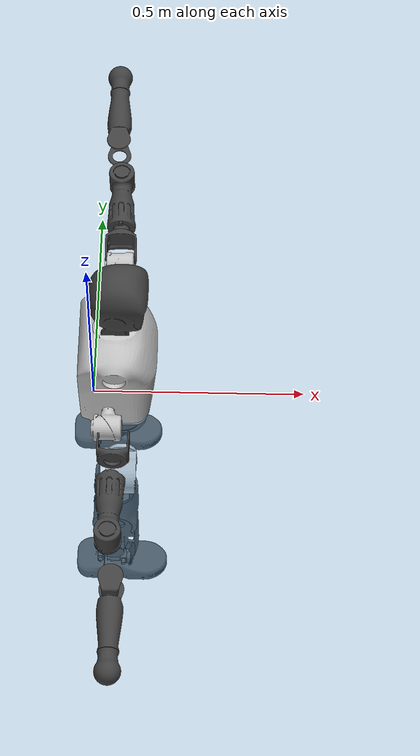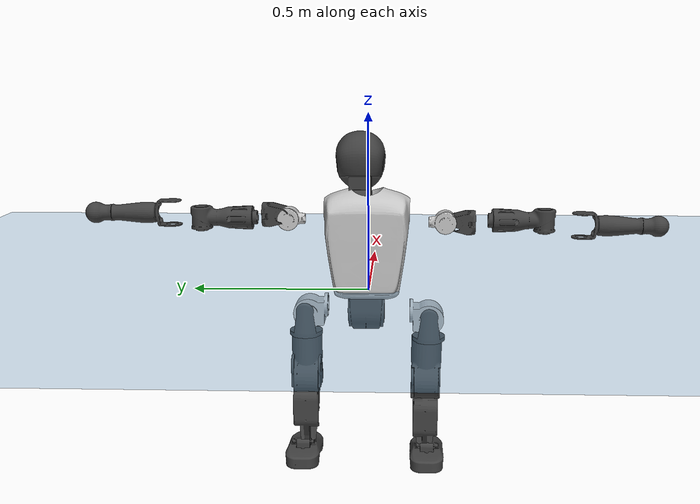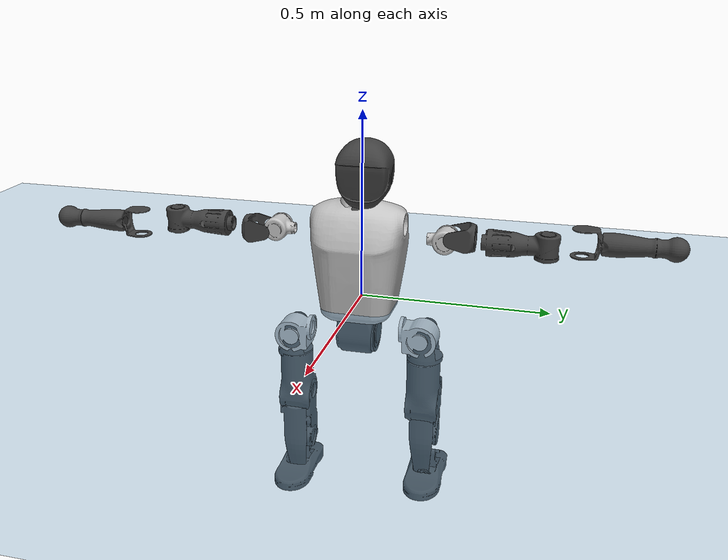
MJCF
<mujoco model="T1">
  <compiler angle="radian" assetdir="assets" balanceinertia="true" inertiafromgeom="false"/>

  <option timestep="0.005" density="1.2" viscosity="2e-05"/>

  <size nkey="1"/>

  <visual>
    <quality shadowsize="8192"/>
    <map shadowclip="0.5"/>
  </visual>

  <default>
    <default class="/">
      <joint armature="0.01" damping="0.01" frictionloss="0.1"/>
      <geom contype="0" conaffinity="0" group="1" solref="-1000 -80"/>
      <site size="0.01 0.005 0.005" group="5"/>
      <general forcelimited="true" biastype="affine" gainprm="25" biasprm="0 -25 -0.6"/>
      <default class="t1">
        <geom rgba="0.25 0.25 0.25 1"/>
        <default class="visual">
          <geom type="mesh" group="2"/>
        </default>
        <default class="collision">
          <geom group="3"/>
        </default>
        <default class="foot">
          <geom size="0.1115 0.05 0.015" type="box" condim="6" group="4" priority="1" solimp="0.015 1 0.015"/>
        </default>
        <default class="reward_collision_sphere">
          <geom group="5" rgba="1 0 0 1"/>
        </default>
      </default>
    </default>
  </default>

  <asset>
    <texture type="skybox" colorspace="auto" name="//unnamed_texture_0" builtin="gradient" rgb1="0.95 0.95 0.95" rgb2="0.95 0.95 0.95" width="100" height="600"/>
    <texture type="2d" colorspace="auto" name="texplane" builtin="checker" rgb1="0.345 0.575 0.748" rgb2="0.345 0.575 0.748" markrgb="1 1 1" width="512" height="512"/>
    <material name="MatPlane" class="/" texture="texplane" texuniform="true" texrepeat="2 2" specular="0.9"/>
    <mesh name="Trunk" class="/" file="Trunk.stl"/>
    <mesh name="H1" class="/" file="H1.stl"/>
    <mesh name="H2" class="/" file="H2.stl"/>
    <mesh name="AL1" class="/" file="AL1.stl"/>
    <mesh name="AL2" class="/" file="AL2.stl"/>
    <mesh name="AL3" class="/" file="AL3.stl"/>
    <mesh name="left_hand_link" class="/" file="left_hand_link.stl"/>
    <mesh name="AR1" class="/" file="AR1.stl"/>
    <mesh name="AR2" class="/" file="AR2.stl"/>
    <mesh name="AR3" class="/" file="AR3.stl"/>
    <mesh name="right_hand_link" class="/" file="right_hand_link.stl"/>
    <mesh name="Waist" class="/" file="Waist.stl"/>
    <mesh name="Hip_Pitch_Left" class="/" file="Hip_Pitch_Left.stl"/>
    <mesh name="Hip_Roll_Left" class="/" file="Hip_Roll_Left.stl"/>
    <mesh name="Hip_Yaw_Left" class="/" file="Hip_Yaw_Left.stl"/>
    <mesh name="Shank_Left" class="/" file="Shank_Left.stl"/>
    <mesh name="Ankle_Cross_Left" class="/" file="Ankle_Cross_Left.stl"/>
    <mesh name="left_foot_link" class="/" file="left_foot_link.stl"/>
    <mesh name="Hip_Pitch_Right" class="/" file="Hip_Pitch_Right.stl"/>
    <mesh name="Hip_Roll_Right" class="/" file="Hip_Roll_Right.stl"/>
    <mesh name="Hip_Yaw_Right" class="/" file="Hip_Yaw_Right.stl"/>
    <mesh name="Shank_Right" class="/" file="Shank_Right.stl"/>
    <mesh name="Ankle_Cross_Right" class="/" file="Ankle_Cross_Right.stl"/>
    <mesh name="right_foot_link" class="/" file="right_foot_link.stl"/>
  </asset>

  <worldbody>
    <geom name="floor" class="/" size="100 100 0.125" type="plane" group="0" material="MatPlane"/>
    <light name="toplight_shadow" class="/" pos="0 0 5" dir="0.0990148 0.0990148 -0.990148" type="directional" ambient="0.04 0.04 0.04" diffuse="0.55 0.55 0.55" specular="0.12 0.12 0.12"/>
    <light name="toplight_fill" class="/" pos="0 0 5" dir="0.0990148 0.0990148 -0.990148" type="directional" castshadow="false" ambient="0.04 0.04 0.04" diffuse="0.3 0.3 0.3" specular="0.08 0.08 0.08"/>
    <body name="trunk" childclass="t1" pos="0.000884204 0.00692713 0.00644571" quat="1 0.000435458 -2.02044e-05 0.000109709">
      <inertial pos="0.0360965 -0.0161388 0.0723513" quat="0.998646 -0.0185228 -0.000896278 -0.0486059" mass="17.4086" diaginertia="0.0431081 1.09067 0.0243617"/>
      <joint name="//unnamed_joint_0" type="free" armature="0" damping="0" frictionloss="0"/>
      <geom name="//unnamed_geom_1" class="visual" rgba="0.76 0.76 0.76 1" mesh="Trunk"/>
      <geom name="//unnamed_geom_2" class="collision" size="0.0832495 0.110999 0.166499" pos="0.0505606 0 0.098451" type="box"/>
      <geom name="//unnamed_geom_3" class="reward_collision_sphere" size="0.127649" pos="0.0505606 0 0.0820425"/>
      <geom name="//unnamed_geom_4" class="reward_collision_sphere" size="0.0166499" pos="0.0505606 0.141685 0"/>
      <geom name="//unnamed_geom_5" class="reward_collision_sphere" size="0.0166499" pos="0.0505606 -0.141685 0"/>
      <geom name="//unnamed_geom_6" class="reward_collision_sphere" size="0.0166499" pos="0.0505606 0.178356 0.147677"/>
      <geom name="//unnamed_geom_7" class="reward_collision_sphere" size="0.0166499" pos="0.0505606 -0.178356 0.147677"/>
      <site name="imu" pos="0.0471134 0.0416318 -0.0269269" size="0.0110999"/>
      <camera name="track" pos="0 -3.33376 0" quat="0.707107 0.707107 0 0" mode="trackcom"/>
      <camera name="ego_camera" pos="0.102807 0 0.344579" quat="-0.5 -0.5 0.5 0.5"/>
      <body name="H1" pos="0.0591276 0.0130901 0.185555" quat="1 -0.000381984 -0.00016901 0.000328184">
        <inertial pos="-0.000801758 -0.0185595 0.0512958" quat="0.744646 -0.0738354 0.0173296 0.663137" mass="0.711691" diaginertia="0.000106974 0.00339403 5.3243e-05"/>
        <joint name="AAHead_yaw" pos="0 0 0" axis="0.0183363 0.0318045 0.999326" stiffness="0.0164438" range="-1.55185 1.85454" armature="0.0114064" damping="0" frictionloss="0.203535"/>
        <geom name="//unnamed_geom_8" class="visual" mesh="H1"/>
        <body name="H2" pos="-0.00533283 0.00666169 0.0635334" quat="1 -0.00062234 -1.68964e-05 -0.000486593">
          <inertial pos="0.012546 0.0164979 0.0876813" quat="0.978802 0.163053 -0.0478155 -0.114342" mass="0.855444" diaginertia="0.000865552 0.0245871 0.000538005"/>
          <joint name="Head_pitch" pos="0 0 0" axis="-0.0244081 -0.999692 -0.00442434" range="-1.18918 0.337599" armature="0.0108329" damping="0" frictionloss="0.168794"/>
          <geom name="//unnamed_geom_9" class="visual" mesh="H2"/>
          <geom name="//unnamed_geom_10" class="collision" size="0.0887995" pos="0.00842676 0 0.0902468"/>
          <geom name="//unnamed_geom_11" class="reward_collision_sphere" size="0.0998994" pos="0.0168535 0 0.0820425"/>
        </body>
      </body>
      <body name="AL1" pos="0.0593575 0.178107 0.188653" quat="0.999975 0.00253066 0.000786439 0.00655938">
        <inertial pos="-0.00087229 0.0830367 0.00735059" quat="0.498504 0.483935 -0.560702 0.45046" mass="0.740029" diaginertia="0.00053395 0.0136977 0.000106288"/>
        <joint name="Left_Shoulder_Pitch" pos="0 0 0" axis="0.00917443 0.999954 0.00283433" range="-3.39934 0.959837" armature="0.0112847" damping="0.0327717" frictionloss="0.106025"/>
        <geom name="//unnamed_geom_12" class="visual" rgba="0.76 0.76 0.76 1" mesh="AL1"/>
        <body name="AL2" pos="0.000750867 0.0655961 0.0107938" quat="0.999985 -0.00356387 -0.000830272 0.00405835">
          <inertial pos="-0.0111328 0.0473564 -0.00925284" quat="0.497611 0.491869 -0.433287 0.568076" mass="0.191431" diaginertia="0.000163915 0.00432474 5.25442e-05"/>
          <joint name="Left_Shoulder_Roll" pos="0 0 0" axis="-1 -0.000177006 0.000963709" range="-1.56048 1.75764" armature="0.0089642" damping="0.00374939" frictionloss="0.136584"/>
          <geom name="//unnamed_geom_13" class="visual" mesh="AL2"/>
          <body name="AL3" pos="-0.000466641 0.084402 -0.00872936" quat="0.999999 -0.00012876 -0.00109831 4.55493e-05">
            <inertial pos="0.0149587 0.140456 0.00964313" quat="0.735533 0.676773 0.0292037 -0.0107998" mass="1.00216" diaginertia="0.00492266 0.131091 0.000180138"/>
            <joint name="Left_Elbow_Pitch" pos="0 0 0" axis="-0.0177318 -0.999128 -0.0377914" range="-2.3522 1.97691" armature="0.0125323" damping="0" frictionloss="0.115492"/>
            <geom name="//unnamed_geom_14" class="visual" mesh="AL3"/>
            <geom name="//unnamed_geom_15" class="collision" size="0.0332998 0.0832495" pos="0 0.0833439 0" quat="0.707105 0.707108 0 0" type="cylinder"/>
            <geom name="//unnamed_geom_16" class="reward_collision_sphere" size="0.0399598"/>
            <body name="left_hand_link" pos="-0.00805837 0.230643 0.0154707" quat="0.999998 0.000244818 0.00189847 1.94423e-05">
              <inertial pos="-0.00255257 0.185666 -0.00163091" quat="0.688291 0.725369 0.00814839 0.00536196" mass="0.429147" diaginertia="0.00404604 0.106897 8.39068e-05"/>
              <joint name="Left_Elbow_Yaw" pos="0 0 0" axis="-0.0175752 0.0284836 0.99944" range="-2.15012 0.0448086" armature="0.0101145" damping="0.0907425" frictionloss="0.0430989"/>
              <geom name="//unnamed_geom_17" class="visual" mesh="left_hand_link"/>
              <geom name="//unnamed_geom_18" class="collision" size="0.0332998 0.0971244" pos="0 0.216694 0" quat="0.707105 0.707108 0 0" type="cylinder"/>
              <geom name="//unnamed_geom_19" class="reward_collision_sphere" size="0.0554997"/>
              <geom name="//unnamed_geom_20" class="reward_collision_sphere" size="0.0388498" pos="0 0.183357 0"/>
              <geom name="//unnamed_geom_21" class="reward_collision_sphere" size="0.0388498" pos="0 0.358379 0"/>
            </body>
          </body>
        </body>
      </body>
      <body name="AR1" pos="0.0459921 -0.175984 0.183762" quat="0.999986 0.00243233 0.0021619 -0.00411064">
        <inertial pos="0.00928276 -0.0766186 0.0148003" quat="0.537606 0.450798 -0.474065 0.531999" mass="0.549843" diaginertia="0.000521682 0.013531 8.52371e-05"/>
        <joint name="Right_Shoulder_Pitch" pos="0 0 0" axis="0.0320019 -0.999086 0.0283246" range="-1.22036 3.31672" armature="0.00868657" damping="0.0761046" frictionloss="0.195891"/>
        <geom name="//unnamed_geom_22" class="visual" rgba="0.76 0.76 0.76 1" mesh="AR1"/>
        <body name="AR2" pos="0.0147406 -0.0763013 -0.00339652" quat="1 -1.01758e-06 -3.28566e-07 -8.01234e-07">
          <inertial pos="0.0127583 -0.0470888 -0.0037507" quat="0.492591 0.457291 -0.495901 0.549837" mass="0.194372" diaginertia="0.00013724 0.00389727 5.24542e-05"/>
          <joint name="Right_Shoulder_Roll" pos="0 0 0" axis="-0.998612 0.0115955 0.0513792" stiffness="0.00051303" range="-1.72085 1.58759" armature="0.0104893" damping="0.0907286" frictionloss="0.0809157"/>
          <geom name="//unnamed_geom_23" class="visual" mesh="AR2"/>
          <body name="AR3" pos="-0.00194479 -0.105554 0.00729789" quat="0.999988 -0.00400569 -0.000354668 0.00292212">
            <inertial pos="-0.0059324 -0.139348 0.00513593" quat="0.713002 0.699306 -0.0507283 -0.00513871" mass="1.24049" diaginertia="0.00484946 0.173315 0.000219801"/>
            <joint name="Right_Elbow_Pitch" pos="0 0 0" axis="-0.0323035 0.999432 -0.00961368" range="-2.20304 2.14425" armature="0.0105818" damping="0.00218944" frictionloss="0.0868125"/>
            <geom name="//unnamed_geom_24" class="visual" mesh="AR3"/>
            <geom name="//unnamed_geom_25" class="collision" size="0.0332998 0.0832495" pos="0 -0.0833439 0" quat="0.707105 0.707108 0 0" type="cylinder"/>
            <geom name="//unnamed_geom_26" class="reward_collision_sphere" size="0.0399598"/>
            <body name="right_hand_link" pos="0.011832 -0.255079 -0.0158083" quat="0.999986 0.0047056 -0.000896523 0.00215678">
              <inertial pos="-9.03259e-05 -0.193591 -0.00656594" quat="0.705533 0.708287 -0.0101451 0.0212143" mass="0.424301" diaginertia="0.00288995 0.0870127 7.79845e-05"/>
              <joint name="Right_Elbow_Yaw" pos="0 0 0" axis="0.00290659 0.000846665 0.999995" range="-0.209508 2.44556" armature="0.0122278" damping="0.0115278" frictionloss="0.0284437"/>
              <geom name="//unnamed_geom_27" class="visual" mesh="right_hand_link"/>
              <geom name="//unnamed_geom_28" class="collision" size="0.0332998 0.0971244" pos="0 -0.216694 0" quat="0.707105 0.707108 0 0" type="cylinder"/>
              <geom name="//unnamed_geom_29" class="reward_collision_sphere" size="0.0554997"/>
              <geom name="//unnamed_geom_30" class="reward_collision_sphere" size="0.0388498" pos="0 -0.183357 0"/>
              <geom name="//unnamed_geom_31" class="reward_collision_sphere" size="0.0388498" pos="0 -0.358379 0"/>
            </body>
          </body>
        </body>
      </body>
      <body name="Waist" pos="0.0644405 0.00292368 -0.0804055" quat="0.999994 0.000715922 0.000998882 0.00310065">
        <inertial pos="0.0188901 -0.00476466 0.00226174" quat="0.981575 0.00989349 -0.19081 0.00202777" mass="4.52932" diaginertia="0.00306364 0.0779033 0.00180706"/>
        <joint name="Waist" pos="0 0 0" axis="-0.0307342 0.00899452 0.999487" stiffness="0.0137558" range="-1.38443 1.57065" armature="0.00552031" damping="0" frictionloss="0.115722"/>
        <geom name="//unnamed_geom_32" class="visual" mesh="Waist"/>
        <body name="Hip_Pitch_Left" pos="-0.00359153 0.16757 0.0129945" quat="0.999998 0.00121078 0.00165455 0.000177761">
          <inertial pos="0.00100191 -0.0245159 -0.0258222" quat="0.980063 0.192299 0.0478953 -0.0143026" mass="1.13274" diaginertia="0.00077148 0.016224 0.000465756"/>
          <joint name="Left_Hip_Pitch" pos="0 0 0" axis="-0.000896905 0.999925 0.0122364" range="-1.81657 1.27753" armature="0.00219748" damping="0" frictionloss="0.0733801"/>
          <geom name="//unnamed_geom_33" class="visual" rgba="0.76 0.76 0.76 1" mesh="Hip_Pitch_Left"/>
          <body name="Hip_Roll_Left" pos="-0.0145348 0.00833583 -0.00753809" quat="1 -0.000204348 0.000258755 0.000288157">
            <inertial pos="0.00967721 -0.000488184 -0.0523658" quat="0.709965 0.0198958 -0.0782926 0.699589" mass="0.573775" diaginertia="0.00078484 0.0158809 0.000176064"/>
            <joint name="Left_Hip_Roll" pos="0 0 0" axis="-0.997849 -0.0465858 0.0461158" range="-1.564 0.104471" armature="0.00290098" damping="0.0327692" frictionloss="0.163118"/>
            <geom name="//unnamed_geom_34" class="visual" mesh="Hip_Roll_Left"/>
            <geom name="//unnamed_geom_35" class="reward_collision_sphere" size="0.0610496"/>
            <body name="Hip_Yaw_Left" pos="0.0106484 -0.000856671 -0.0764677" quat="0.999998 -0.000819769 0.00145002 0.000880277">
              <inertial pos="0.0071619 -0.00599821 -0.068724" quat="0.698699 -0.0188194 -0.0340278 0.714358" mass="3.206" diaginertia="0.0113532 0.389811 0.000999045"/>
              <joint name="Left_Hip_Yaw" pos="0 0 0" axis="-0.0124 0.0164001 -0.999789" stiffness="0.00263997" range="-0.815388 0.726374" armature="0.0107656" damping="0.0428976" frictionloss="0.109762"/>
              <geom name="//unnamed_geom_36" class="visual" mesh="Hip_Yaw_Left"/>
              <geom name="//unnamed_geom_37" class="collision" size="0.0554997 0.0887995" type="cylinder"/>
              <body name="Shank_Left" pos="-0.0276287 -8.92369e-05 -0.0930189" quat="0.999999 0.000942947 -0.000745127 0.00039227">
                <inertial pos="-0.000203946 -0.0127828 -0.11591" quat="0.99739 0.00230126 -0.0274625 0.0667311" mass="2.8996" diaginertia="0.0150591 0.46913 0.00065551"/>
                <joint name="Left_Knee_Pitch" pos="0 0 0" axis="0.00679236 0.999932 -0.00951703" range="-0.170617 2.50101" armature="0.0108411" damping="0.00503048" frictionloss="0.138356"/>
                <geom name="//unnamed_geom_38" class="visual" mesh="Shank_Left"/>
                <geom name="//unnamed_geom_39" class="collision" size="0.0554997 0.0832495" pos="0 0 -0.098451" type="cylinder"/>
                <geom name="//unnamed_geom_40" class="reward_collision_sphere" size="0.0721496"/>
                <body name="Ankle_Cross_Left" pos="-0.00327257 -0.0015728 -0.241521" quat="0.999999 0.000886506 0.00100255 0.000589275">
                  <inertial pos="0.00479897 -0.0115725 -0.0157316" quat="0.460484 0.58343 0.537125 0.398825" mass="0.0876145" diaginertia="1.06883e-05 0.000386285 4.41717e-06"/>
                  <joint name="Left_Ankle_Pitch" pos="0 0 0" axis="-0.0014172 0.999996 -0.00245005" range="-1.16311 0.262764" armature="0.0155628" damping="0.028331" frictionloss="0.0774721"/>
                  <geom name="//unnamed_geom_41" class="visual" mesh="Ankle_Cross_Left"/>
                  <body name="left_foot_link" pos="0.00469008 0.0108831 -0.0164938" quat="0.999991 -0.000787422 -0.00170163 -0.00370318">
                    <inertial pos="0.0116811 -0.000622257 0.00528697" quat="0.0134398 0.599377 0.00446687 0.800342" mass="1.06644" diaginertia="0.00157496 0.031598 0.000754056"/>
                    <joint name="Left_Ankle_Roll" pos="0 0 0" axis="-0.999917 -0.002058 0.0127159" range="-0.468488 0.44024" armature="0.0117671" damping="0.0318644" frictionloss="0.114984"/>
                    <geom name="//unnamed_geom_42" class="visual" mesh="left_foot_link"/>
                    <geom name="left_foot" class="foot" size="0.0817329 0.0250268 0.0169241" pos="0.00842676 0 -0.0123064"/>
                    <geom name="//unnamed_geom_44" class="reward_collision_sphere" size="0.0577196" pos="0.00842676 0 -0.0123064"/>
                    <geom name="//unnamed_geom_45" class="reward_collision_sphere" size="0.0332998" pos="0.0800543 -0.0383382 -0.0123064"/>
                    <geom name="//unnamed_geom_46" class="reward_collision_sphere" size="0.0332998" pos="-0.0589873 -0.0383382 -0.0123064"/>
                    <site name="left_foot" class="foot" pos="0.00842676 0 -0.0123064" size="0.0110999"/>
                  </body>
                </body>
              </body>
            </body>
          </body>
        </body>
        <body name="Hip_Pitch_Right" pos="0.00346453 -0.182738 -0.00548358" quat="0.999975 0.00267139 -0.00657697 -0.000684858">
          <inertial pos="0.0129357 0.0187407 -0.0283873" quat="0.978663 -0.205326 0.00226874 0.0074141" mass="1.21074" diaginertia="0.000659708 0.0173657 0.000483575"/>
          <joint name="Right_Hip_Pitch" pos="0 0 0" axis="-0.0180641 -0.999814 -0.00671883" range="-1.58543 2.11728" armature="0.0170295" damping="0" frictionloss="0.11356"/>
          <geom name="//unnamed_geom_47" class="visual" rgba="0.76 0.76 0.76 1" mesh="Hip_Pitch_Right"/>
          <body name="Hip_Roll_Right" pos="-0.0149806 -0.000736729 -0.00574429" quat="0.999991 0.000358932 0.0031661 -0.00295231">
            <inertial pos="0.000832359 -0.00675682 -0.0543323" quat="0.727553 0.0634672 -0.0180546 0.682871" mass="0.55631" diaginertia="0.000743342 0.0158268 0.000185083"/>
            <joint name="Right_Hip_Roll" pos="0 0 0" axis="-1 0.000127175 2.11914e-05" range="-0.528398 1.6657" armature="0.0116124" damping="0.00553835" frictionloss="0.0612623"/>
            <geom name="//unnamed_geom_48" class="visual" mesh="Hip_Roll_Right"/>
            <geom name="//unnamed_geom_49" class="reward_collision_sphere" size="0.0610496"/>
            <body name="Hip_Yaw_Right" pos="0.00745629 0.00509181 -0.0693666" quat="0.999998 -0.00175068 0.000601146 0.000132269">
              <inertial pos="-0.00581212 0.00891103 -0.0584065" quat="0.725222 -0.00288517 -0.0326001 0.687737" mass="2.60056" diaginertia="0.00997081 0.266559 0.00100575"/>
              <joint name="Right_Hip_Yaw" pos="0 0 0" axis="0.0646386 0.0539239 -0.996451" stiffness="0.0126994" range="-1.08365 0.889866" armature="0.00368539" damping="0.0798159" frictionloss="0.113933"/>
              <geom name="//unnamed_geom_50" class="visual" mesh="Hip_Yaw_Right"/>
              <geom name="//unnamed_geom_51" class="collision" size="0.0554997 0.0887995" type="cylinder"/>
              <body name="Shank_Right" pos="-0.00840192 0.001516 -0.122502" quat="0.999988 -0.000975907 0.0032234 -0.00348132">
                <inertial pos="-0.00618118 -0.000122688 -0.0884183" quat="0.998995 -0.00845853 -0.0175592 -0.0403611" mass="1.96422" diaginertia="0.012725 0.399831 0.000592201"/>
                <joint name="Right_Knee_Pitch" pos="0 0 0" axis="0.0323122 -0.998042 0.0535511" range="-2.6302 -0.145337" armature="0.00221756" damping="0" frictionloss="0.106109"/>
                <geom name="//unnamed_geom_52" class="visual" mesh="Shank_Right"/>
                <geom name="//unnamed_geom_53" class="collision" size="0.0554997 0.0832495" pos="0 0 -0.098451" type="cylinder"/>
                <geom name="//unnamed_geom_54" class="reward_collision_sphere" size="0.0721496"/>
                <body name="Ankle_Cross_Right" pos="0.00980382 -0.0059595 -0.232404" quat="1 0.000512573 -0.00017772 0.000155103">
                  <inertial pos="-0.00278967 0.0102864 -0.00652276" quat="0.426184 0.534237 0.575447 0.449242" mass="0.081124" diaginertia="1.14875e-05 0.000306222 3.38423e-06"/>
                  <joint name="Right_Ankle_Pitch" pos="0 0 0" axis="0.000426478 -0.999059 0.0433712" stiffness="0.0645519" range="-0.0836203 1.14102" armature="0.0111318" damping="0" frictionloss="0.137455"/>
                  <geom name="//unnamed_geom_55" class="visual" mesh="Ankle_Cross_Right"/>
                  <body name="right_foot_link" pos="-0.0142756 -0.000203312 -0.00299121" quat="1 4.18502e-05 -4.80182e-05 2.0921e-05">
                    <inertial pos="0.0156234 0.00526873 -0.0066671" quat="0.00121222 0.620556 0.000796635 0.78416" mass="0.929308" diaginertia="0.00112254 0.0346955 0.000777432"/>
                    <joint name="Right_Ankle_Roll" pos="0 0 0" axis="-0.998594 0.00295992 -0.052935" stiffness="0.0137395" range="-0.137775 0.442149" armature="0.00980985" damping="0.0741909" frictionloss="0.091278"/>
                    <geom name="//unnamed_geom_56" class="visual" mesh="right_foot_link"/>
                    <geom name="right_foot" class="foot" size="0.0995156 0.0686093 0.020764" pos="0.00842676 0 -0.0123064"/>
                    <geom name="//unnamed_geom_58" class="reward_collision_sphere" size="0.0443997"/>
                    <geom name="//unnamed_geom_59" class="reward_collision_sphere" size="0.0332998" pos="0.00842676 0 -0.0123064"/>
                    <geom name="//unnamed_geom_60" class="reward_collision_sphere" size="0.0332998" pos="0.0800543 0.0383382 -0.0123064"/>
                    <geom name="//unnamed_geom_61" class="reward_collision_sphere" size="0.0332998" pos="-0.0589873 0.0383382 -0.0123064"/>
                    <site name="right_foot" class="foot" pos="0.00842676 0 -0.0123064" size="0.0110999"/>
                  </body>
                </body>
              </body>
            </body>
          </body>
        </body>
      </body>
    </body>
  </worldbody>

  <contact>
    <pair class="/" geom1="floor" geom2="left_foot" name="//unnamed_contact_0"/>
    <pair class="/" geom1="floor" geom2="right_foot" name="//unnamed_contact_1"/>
  </contact>

  <actuator>
    <general name="AAHead_yaw" class="/" joint="AAHead_yaw" forcerange="-6.1315 6.1315" gainprm="35.8192" biasprm="0 -35.8192 -0.711072"/>
    <general name="Head_pitch" class="/" joint="Head_pitch" forcerange="-8.02981 8.02981" gainprm="35.8192" biasprm="0 -35.8192 -0.711072"/>
    <general name="Left_Shoulder_Pitch" class="/" joint="Left_Shoulder_Pitch" forcerange="-27.0957 27.0957" gainprm="35.8192" biasprm="0 -35.8192 -0.711072"/>
    <general name="Left_Shoulder_Roll" class="/" joint="Left_Shoulder_Roll" forcerange="-24.5291 24.5291" gainprm="35.8192" biasprm="0 -35.8192 -0.711072"/>
    <general name="Left_Elbow_Pitch" class="/" joint="Left_Elbow_Pitch" forcerange="-20.845 20.845" gainprm="35.8192" biasprm="0 -35.8192 -0.711072"/>
    <general name="Left_Elbow_Yaw" class="/" joint="Left_Elbow_Yaw" forcerange="-24.751 24.751" gainprm="35.8192" biasprm="0 -35.8192 -0.711072"/>
    <general name="Right_Shoulder_Pitch" class="/" joint="Right_Shoulder_Pitch" forcerange="-15.3875 15.3875" gainprm="35.8192" biasprm="0 -35.8192 -0.711072"/>
    <general name="Right_Shoulder_Roll" class="/" joint="Right_Shoulder_Roll" forcerange="-26.8244 26.8244" gainprm="35.8192" biasprm="0 -35.8192 -0.711072"/>
    <general name="Right_Elbow_Pitch" class="/" joint="Right_Elbow_Pitch" forcerange="-9.01835 9.01835" gainprm="35.8192" biasprm="0 -35.8192 -0.711072"/>
    <general name="Right_Elbow_Yaw" class="/" joint="Right_Elbow_Yaw" forcerange="-14.9305 14.9305" gainprm="35.8192" biasprm="0 -35.8192 -0.711072"/>
    <general name="Waist" class="/" joint="Waist" forcerange="-24.8625 24.8625" gainprm="35.8192" biasprm="0 -35.8192 -0.711072"/>
    <general name="Left_Hip_Pitch" class="/" joint="Left_Hip_Pitch" forcerange="-48.041 48.041" gainprm="35.8192" biasprm="0 -35.8192 -0.711072"/>
    <general name="Left_Hip_Roll" class="/" joint="Left_Hip_Roll" forcerange="-18.3694 18.3694" gainprm="35.8192" biasprm="0 -35.8192 -0.711072"/>
    <general name="Left_Hip_Yaw" class="/" joint="Left_Hip_Yaw" forcerange="-49.1221 49.1221" gainprm="35.8192" biasprm="0 -35.8192 -0.711072"/>
    <general name="Left_Knee_Pitch" class="/" joint="Left_Knee_Pitch" forcerange="-57.6208 57.6208" gainprm="35.8192" biasprm="0 -35.8192 -0.711072"/>
    <general name="Left_Ankle_Pitch" class="/" joint="Left_Ankle_Pitch" forcerange="-22.3157 22.3157" gainprm="35.8192" biasprm="0 -35.8192 -0.711072"/>
    <general name="Left_Ankle_Roll" class="/" joint="Left_Ankle_Roll" forcerange="-8.17865 8.17865" gainprm="35.8192" biasprm="0 -35.8192 -0.711072"/>
    <general name="Right_Hip_Pitch" class="/" joint="Right_Hip_Pitch" forcerange="-50.0686 50.0686" gainprm="35.8192" biasprm="0 -35.8192 -0.711072"/>
    <general name="Right_Hip_Roll" class="/" joint="Right_Hip_Roll" forcerange="-32.6798 32.6798" gainprm="35.8192" biasprm="0 -35.8192 -0.711072"/>
    <general name="Right_Hip_Yaw" class="/" joint="Right_Hip_Yaw" forcerange="-14.3536 14.3536" gainprm="35.8192" biasprm="0 -35.8192 -0.711072"/>
    <general name="Right_Knee_Pitch" class="/" joint="Right_Knee_Pitch" forcerange="-65.3433 65.3433" gainprm="35.8192" biasprm="0 -35.8192 -0.711072"/>
    <general name="Right_Ankle_Pitch" class="/" joint="Right_Ankle_Pitch" forcerange="-25.8525 25.8525" gainprm="35.8192" biasprm="0 -35.8192 -0.711072"/>
    <general name="Right_Ankle_Roll" class="/" joint="Right_Ankle_Roll" forcerange="-22.7155 22.7155" gainprm="35.8192" biasprm="0 -35.8192 -0.711072"/>
  </actuator>

  <sensor>
    <gyro site="imu" name="imu_angular_velocity"/>
    <velocimeter site="imu" name="imu_linear_velocity"/>
    <framelinvel objtype="site" objname="left_foot" name="left_foot_global_linear_velocity"/>
    <framelinvel objtype="site" objname="right_foot" name="right_foot_global_linear_velocity"/>
  </sensor>

  <keyframe>
    <key name="home" qpos="0 0 0.6385 1 0 0 0 0 0 0 1.4 0 -0.4 0 -1.4 0 0.4 0 -0.4 0 0 0.8 -0.4 0 0.4 0 0 -0.8 0.4 0"/>
  </keyframe>
</mujoco>
